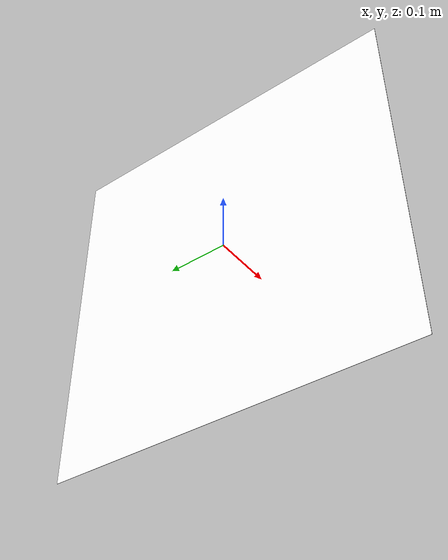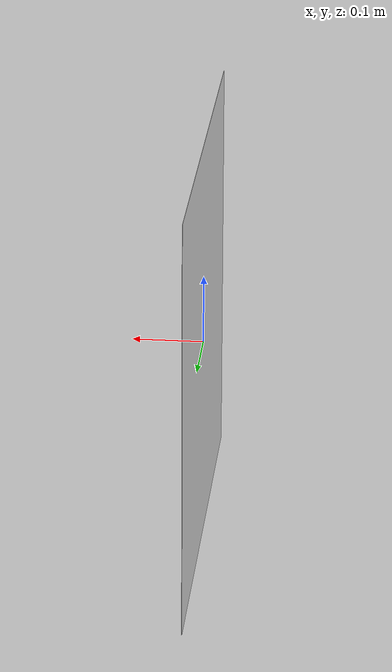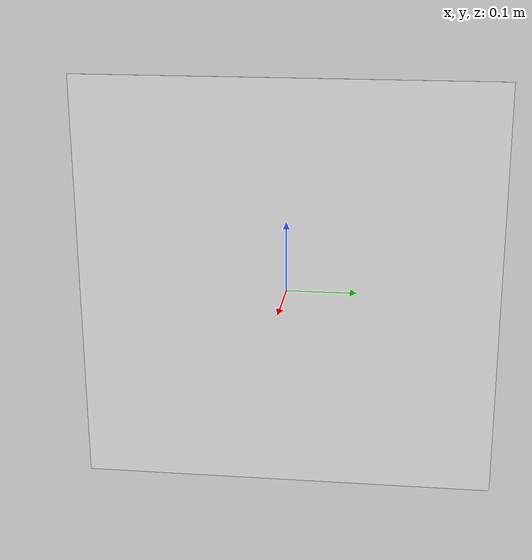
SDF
<?xml version="1.0"?>
<sdf version="1.9">
  <model name="aruco_marker_0">
    <static>true</static>

    <link name="marker_link">
      <visual name="marker_visual">
        <!-- หมุนป้ายให้หันไปทางหุ่นยนต์ -->
        <pose>0 0 0 0 -1.570796 0</pose>

        <cast_shadows>false</cast_shadows>

        <geometry>
          <plane>
            <normal>0 0 1</normal>
            <size>0.60 0.60</size>
          </plane>
        </geometry>

        <material>
          <ambient>1 1 1 1</ambient>
          <diffuse>1 1 1 1</diffuse>
          <specular>0 0 0 1</specular>

          <pbr>
            <metal>
              <albedo_map>
                materials/textures/aruco_0.png
              </albedo_map>
              <metalness>0.0</metalness>
              <roughness>1.0</roughness>
            </metal>
          </pbr>
        </material>
      </visual>
    </link>
  </model>
</sdf>
